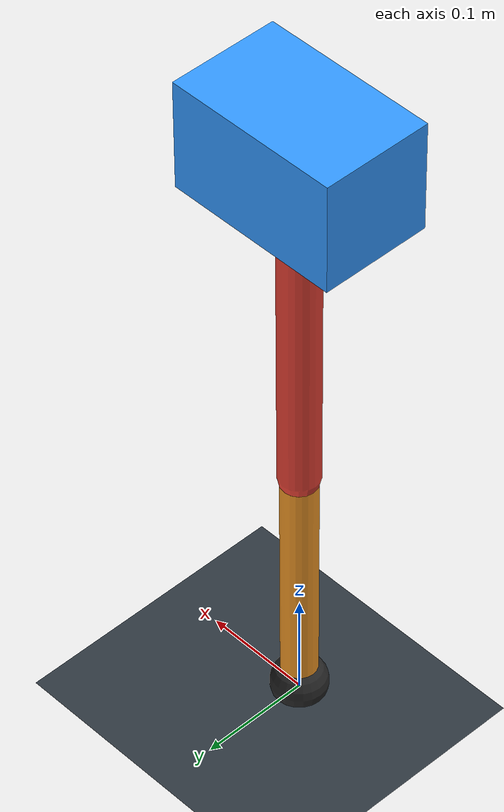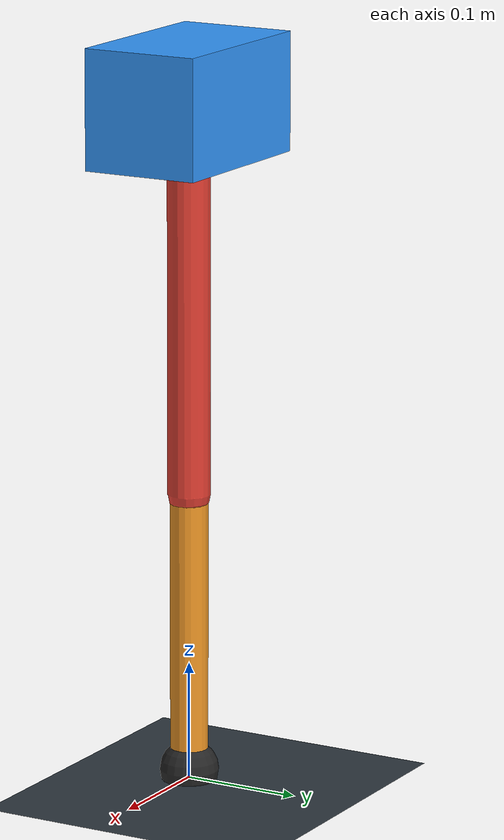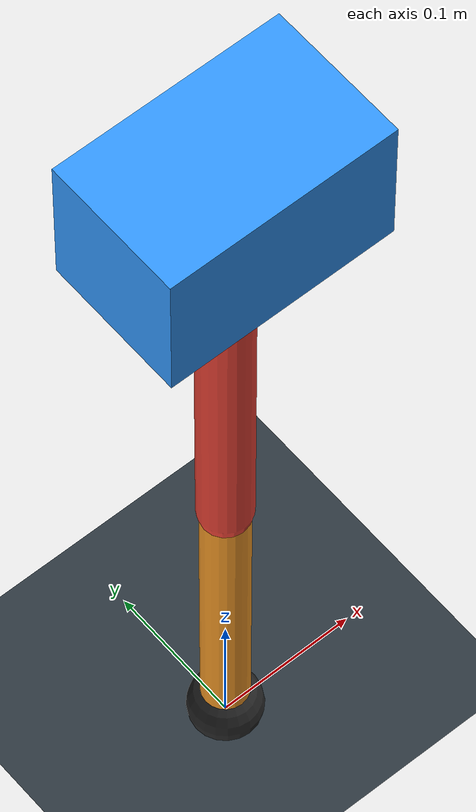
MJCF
<mujoco model="single_axis_two_bar">
  <compiler angle="radian" inertiafromgeom="true"/>
  <option timestep="0.001" integrator="implicitfast" gravity="0 0 -9.81"/>
  <default>
    <joint damping="0.08"/>
    <geom friction="1.2 0.01 0.0001" condim="3"/>
  </default>
  <worldbody>
    <geom name="floor" type="plane" size="5 5 0.1" rgba="0.18 0.22 0.25 1"/>
    <body name="carriage" pos="0 0 0.5774233255447292">
      <joint name="pole_slide" type="slide" axis="0 0 1"/>
      <geom name="payload" type="box" size="0.08 0.05 0.05" mass="2.6570580066362712" rgba="0.2 0.6 1 1"/>
      <body name="thigh" pos="0 0 0">
        <joint name="hip" type="hinge" axis="0 1 0"/>
        <geom name="thigh_link" type="capsule" fromto="0 0 0 0 0 -0.3306182921267825" size="0.018" mass="0.2355699018756166" rgba="0.9 0.25 0.2 1"/>
        <body name="shank" pos="0 0 -0.3306182921267825">
          <joint name="knee" type="hinge" axis="0 1 0"/>
          <geom name="shank_link" type="capsule" fromto="0 0 0 0 0 -0.23889029090902086" size="0.016" mass="0.17021248892936505" rgba="0.95 0.6 0.15 1"/>
          <geom name="foot" type="sphere" pos="0 0 -0.23889029090902086" size="0.025" mass="0.03" rgba="0.15 0.15 0.15 1"/>
          <site name="toe" pos="0 0 -0.23889029090902086" size="0.008"/>
        </body>
      </body>
    </body>
  </worldbody>
  <actuator>
    <motor name="hip_motor" joint="hip" ctrlrange="-27.322219104901638 27.322219104901638"/>
    <motor name="knee_motor" joint="knee" ctrlrange="-80.56385180582102 80.56385180582102"/>
  </actuator>
</mujoco>
